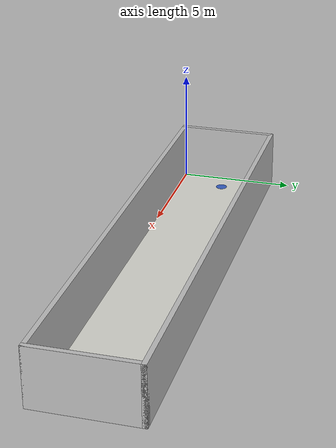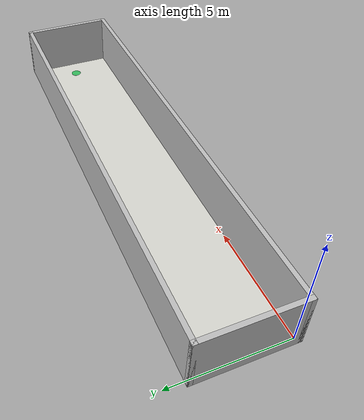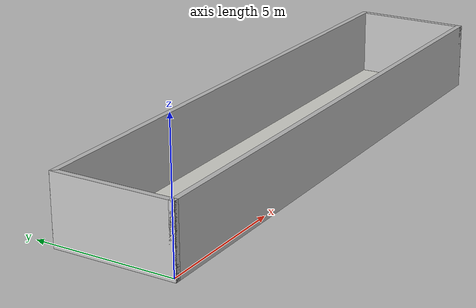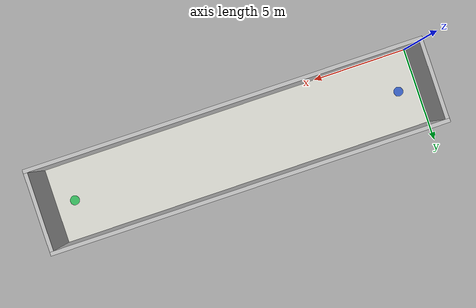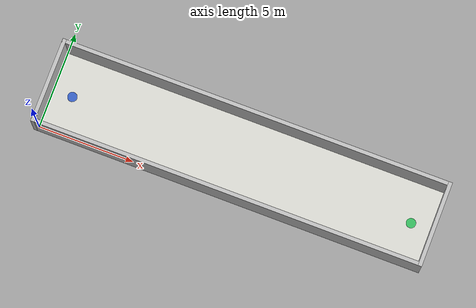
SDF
<?xml version="1.0" ?>
<sdf version="1.9">
  <world name="e1_open_corridor">

    <!-- ── Physics ─────────────────────────────────────── -->
    <physics name="default_physics" type="ode">
      <max_step_size>0.001</max_step_size>
      <real_time_factor>1.0</real_time_factor>
      <real_time_update_rate>1000</real_time_update_rate>
      <ode>
        <solver>
          <type>quick</type>
          <iters>50</iters>
          <sor>1.3</sor>
        </solver>
        <constraints>
          <cfm>0.0</cfm>
          <erp>0.2</erp>
          <contact_max_correcting_vel>100.0</contact_max_correcting_vel>
          <contact_surface_layer>0.001</contact_surface_layer>
        </constraints>
      </ode>
    </physics>

    <!-- ── Scene / lighting ─────────────────────────────── -->
    <scene>
      <ambient>0.6 0.6 0.6 1.0</ambient>
      <background>0.7 0.7 0.7 1.0</background>
      <shadows>false</shadows>
    </scene>

    <light name="ceiling_light" type="directional">
      <cast_shadows>false</cast_shadows>
      <pose>10 2 8 0 0 0</pose>
      <diffuse>0.9 0.9 0.9 1.0</diffuse>
      <specular>0.2 0.2 0.2 1.0</specular>
      <direction>0 0 -1</direction>
    </light>

    <!-- ── Gravity ───────────────────────────────────────── -->
    <gravity>0 0 -9.81</gravity>
    <magnetic_field>6e-06 2.3e-05 -4.2e-05</magnetic_field>
    <atmosphere type="adiabatic"/>

    <model name="floor">
      <static>true</static>
      <pose>10 2 0 0 0 0</pose>
      <link name="floor_link">
        <collision name="floor_collision">
          <geometry>
            <box><size>20 4 0.05</size></box>
          </geometry>
          <surface>
            <friction>
              <ode><mu>0.8</mu><mu2>0.8</mu2></ode>
            </friction>
          </surface>
        </collision>
        <visual name="floor_visual">
          <geometry>
            <box><size>20 4 0.05</size></box>
          </geometry>
          <material>
            <ambient>0.85 0.85 0.82 1.0</ambient>
            <diffuse>0.85 0.85 0.82 1.0</diffuse>
            <specular>0.1 0.1 0.1 1.0</specular>
          </material>
        </visual>
      </link>
    </model>

    <!-- South wall  y=0  inner face → centre at y=-0.1 -->
    <model name="wall_south">
      <static>true</static>
      <pose>10 -0.1 1.25 0 0 0</pose>
      <link name="link">
        <collision name="col">
          <geometry><box><size>20.4 0.2 2.5</size></box></geometry>
        </collision>
        <visual name="vis">
          <geometry><box><size>20.4 0.2 2.5</size></box></geometry>
          <material>
            <ambient>0.75 0.75 0.75 1.0</ambient>
            <diffuse>0.75 0.75 0.75 1.0</diffuse>
          </material>
        </visual>
      </link>
    </model>

    <!-- North wall  y=4  inner face → centre at y=4.1 -->
    <model name="wall_north">
      <static>true</static>
      <pose>10 4.1 1.25 0 0 0</pose>
      <link name="link">
        <collision name="col">
          <geometry><box><size>20.4 0.2 2.5</size></box></geometry>
        </collision>
        <visual name="vis">
          <geometry><box><size>20.4 0.2 2.5</size></box></geometry>
          <material>
            <ambient>0.75 0.75 0.75 1.0</ambient>
            <diffuse>0.75 0.75 0.75 1.0</diffuse>
          </material>
        </visual>
      </link>
    </model>

    <!-- West wall  x=0  inner face → centre at x=-0.1 -->
    <model name="wall_west">
      <static>true</static>
      <pose>-0.1 2 1.25 0 0 0</pose>
      <link name="link">
        <collision name="col">
          <geometry><box><size>0.2 4.4 2.5</size></box></geometry>
        </collision>
        <visual name="vis">
          <geometry><box><size>0.2 4.4 2.5</size></box></geometry>
          <material>
            <ambient>0.75 0.75 0.75 1.0</ambient>
            <diffuse>0.75 0.75 0.75 1.0</diffuse>
          </material>
        </visual>
      </link>
    </model>

    <!-- East wall  x=20  inner face → centre at x=20.1 -->
    <model name="wall_east">
      <static>true</static>
      <pose>20.1 2 1.25 0 0 0</pose>
      <link name="link">
        <collision name="col">
          <geometry><box><size>0.2 4.4 2.5</size></box></geometry>
        </collision>
        <visual name="vis">
          <geometry><box><size>0.2 4.4 2.5</size></box></geometry>
          <material>
            <ambient>0.75 0.75 0.75 1.0</ambient>
            <diffuse>0.75 0.75 0.75 1.0</diffuse>
          </material>
        </visual>
      </link>
    </model>

    <!-- Start marker (blue) at x=1 y=2 -->
    <model name="marker_start">
      <static>true</static>
      <pose>1 2 0.026 0 0 0</pose>
      <link name="link">
        <visual name="vis">
          <geometry>
            <cylinder><radius>0.25</radius><length>0.01</length></cylinder>
          </geometry>
          <material>
            <ambient>0.1 0.3 0.8 0.8</ambient>
            <diffuse>0.1 0.3 0.8 0.8</diffuse>
          </material>
        </visual>
      </link>
    </model>

    <!-- Goal marker (green) at x=19 y=2 -->
    <model name="marker_goal">
      <static>true</static>
      <pose>19 2 0.026 0 0 0</pose>
      <link name="link">
        <visual name="vis">
          <geometry>
            <cylinder><radius>0.25</radius><length>0.01</length></cylinder>
          </geometry>
          <material>
            <ambient>0.1 0.75 0.3 0.8</ambient>
            <diffuse>0.1 0.75 0.3 0.8</diffuse>
          </material>
        </visual>
      </link>
    </model>

    <gui fullscreen="0">
      <camera name="user_camera">
        <pose>10 2 22 0 1.5707 0</pose>
        <view_controller>orbit</view_controller>
      </camera>
    </gui>

  </world>
</sdf>
